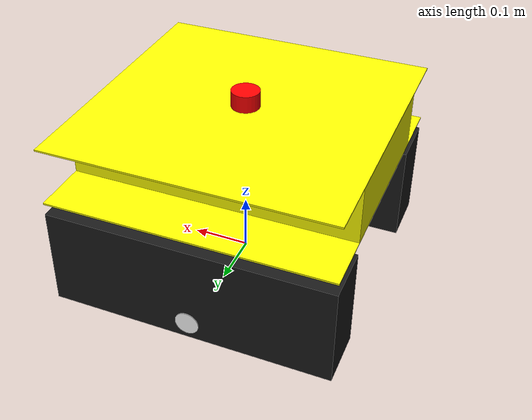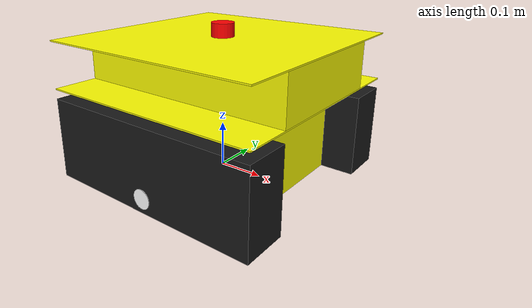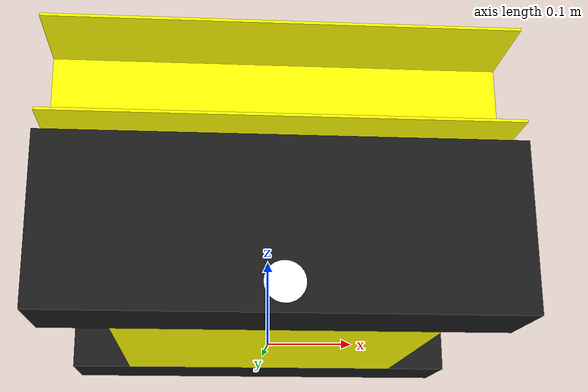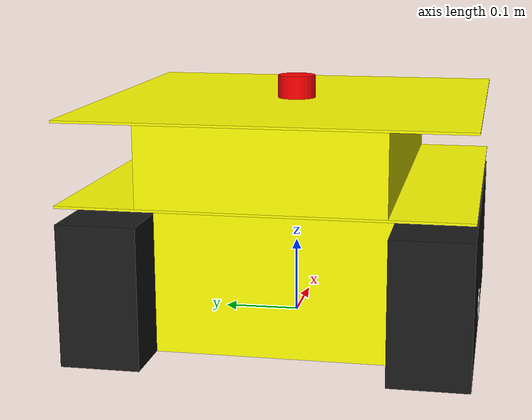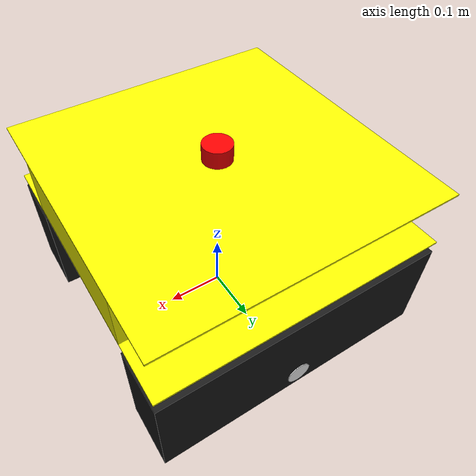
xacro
<?xml version="1.0"?>
<robot xmlns:xacro="http://www.ros.org/wiki/xacro" name="my_robot">

  <!-- ======================= Properties ======================= -->
  <xacro:property name="body_length" value="0.35"/>
  <xacro:property name="body_width" value="0.3"/>
  <xacro:property name="body_height" value="0.2"/>
  <xacro:property name="track_length" value="0.5"/>
  <xacro:property name="track_width" value="0.1"/>
  <xacro:property name="track_height" value="0.18"/>
  <xacro:property name="lidar_radius" value="0.025"/>
  <xacro:property name="lidar_height" value="0.03"/>
  <xacro:property name="wheel_radius" value="0.021"/>
  <xacro:property name="wheel_thickness" value="0.001"/>
  <xacro:property name="wheel_z_offset" value="-0.07"/>
  <xacro:property name="top_plate_length" value="0.5"/>
  <xacro:property name="top_plate_width" value="0.5"/>
  <xacro:property name="top_plate_thickness" value="0.003"/>
  <xacro:property name="lidar_stand_length" value="0.5"/>
  <xacro:property name="lidar_stand_width" value="0.3"/>
  <xacro:property name="lidar_stand_height" value="0.1"/>
  <xacro:property name="lidar_plate_length" value="0.5"/>
  <xacro:property name="lidar_plate_width" value="0.5"/>
  <xacro:property name="lidar_plate_thickness" value="0.003"/>
  <!-- ## NEW: IMU Box Size ## -->
  <xacro:property name="imu_size" value="0.02"/>

  <!-- ======================= Materials ======================= -->
  <material name="black">
    <color rgba="0.1 0.1 0.1 1.0"/>
  </material>
  <material name="yellow">
    <color rgba="1.0 1.0 0.0 1.0"/>
  </material>
  <material name="red">
    <color rgba="1 0 0 1"/>
  </material>
  <material name="white">
    <color rgba="1.0 1.0 1.0 1.0"/>
  </material>

  <!-- ======================= Robot Structure ======================= -->
  <link name="base_footprint"/>

  <link name="base_link">
    <visual>
      <geometry>
        <box size="${body_length} ${body_width} ${body_height}"/>
      </geometry>
      <material name="yellow"/>
    </visual>
    <collision>
      <geometry>
        <box size="${body_length*0.9} ${body_width*0.9} ${body_height*0.9}"/>
      </geometry>
    </collision>
    <inertial>
      <mass value="5.0"/>
      <inertia ixx="0.4" ixy="0" ixz="0" iyy="0.4" iyz="0" izz="0.2"/>
    </inertial>
  </link>
  <joint name="base_footprint_joint" type="fixed">
    <parent link="base_footprint"/>
    <child link="base_link"/>
    <origin xyz="0 0 ${wheel_radius - wheel_z_offset}"/>
  </joint>

  <!-- ## NEW: IMU Sensor Link and Joint ## -->
  <link name="imu_link">
    <inertial>
      <mass value="0.01"/>
      <inertia ixx="1e-6" ixy="0" ixz="0" iyy="1e-6" iyz="0" izz="1e-6"/>
    </inertial>
    <visual>
      <geometry>
        <box size="${imu_size} ${imu_size} ${imu_size}"/>
      </geometry>
      <material name="red"/>
    </visual>
    <collision>
      <geometry>
        <box size="${imu_size} ${imu_size} ${imu_size}"/>
      </geometry>
    </collision>
  </link>
  <joint name="imu_joint" type="fixed">
    <parent link="base_link"/>
    <child link="imu_link"/>
    <origin xyz="0 0 0"/>
  </joint>

  <xacro:macro name="track_housing" params="prefix side">
    <link name="${prefix}_track">
      <visual>
        <geometry>
          <box size="${track_length} ${track_width} ${track_height}"/>
        </geometry>
        <material name="black"/>
      </visual>
    </link>
    <joint name="base_to_${prefix}_track" type="fixed">
      <parent link="base_link"/>
      <child link="${prefix}_track"/>
      <origin xyz="0 ${side * (body_width/2 + track_width/2)} ${-body_height/2 + track_height/2}"/>
    </joint>
  </xacro:macro>
  <xacro:track_housing prefix="left" side="1"/>
  <xacro:track_housing prefix="right" side="-1"/>

  <xacro:macro name="drive_wheel" params="prefix side">
    <link name="${prefix}_wheel">
      <visual>
        <origin rpy="${pi/2} 0 0"/>
        <geometry>
          <cylinder radius="${wheel_radius}" length="${wheel_thickness}"/>
        </geometry>
        <material name="white"/>
      </visual>
      <collision>
        <origin rpy="${pi/2} 0 0"/>
        <geometry>
          <cylinder radius="${wheel_radius}" length="${wheel_thickness}"/>
        </geometry>
      </collision>
      <inertial>
        <mass value="0.5"/>
        <inertia ixx="0.001" ixy="0" ixz="0" iyy="0.001" iyz="0" izz="0.001"/>
      </inertial>
    </link>

    <joint name="${prefix}_wheel_joint" type="continuous">
      <parent link="base_link"/>
      <child link="${prefix}_wheel"/>
      <origin xyz="0 ${side * (body_width/2 + track_width + wheel_thickness/2)} ${wheel_z_offset}"/>
      <axis xyz="0 1 0"/>
    </joint>
  </xacro:macro>
  <xacro:drive_wheel prefix="left" side="1"/>
  <xacro:drive_wheel prefix="right" side="-1"/>

  <link name="top_plate">
    <visual>
      <geometry>
        <box size="${top_plate_length} ${top_plate_width} ${top_plate_thickness}"/>
      </geometry>
      <material name="yellow"/>
    </visual>
    <collision>
      <geometry>
        <box size="${top_plate_length} ${top_plate_width} ${top_plate_thickness}"/>
      </geometry>
    </collision>
    <inertial>
      <mass value="0.5"/>
      <inertia ixx="0.01" ixy="0" ixz="0" iyy="0.01" iyz="0" izz="0.01"/>
    </inertial>
  </link>
  <joint name="top_plate_joint" type="fixed">
    <parent link="base_link"/>
    <child link="top_plate"/>
    <origin xyz="0 0 ${body_height/2 + top_plate_thickness/2}"/>
  </joint>

  <link name="lidar_stand">
    <visual>
      <geometry>
        <box size="${lidar_stand_length} ${lidar_stand_width} ${lidar_stand_height}"/>
      </geometry>
      <material name="yellow"/>
    </visual>
    <collision>
      <geometry>
        <box size="${lidar_stand_length} ${lidar_stand_width} ${lidar_stand_height}"/>
      </geometry>
    </collision>
    <inertial>
      <mass value="0.2"/>
      <inertia ixx="0.01" ixy="0" ixz="0" iyy="0.01" iyz="0" izz="0.01"/>
    </inertial>
  </link>
  <joint name="lidar_stand_joint" type="fixed">
    <parent link="top_plate"/>
    <child link="lidar_stand"/>
    <origin xyz="0 0 ${top_plate_thickness/2 + lidar_stand_height/2}"/>
  </joint>

  <link name="lidar_plate">
    <visual>
      <geometry>
        <box size="${lidar_plate_length} ${lidar_plate_width} ${lidar_plate_thickness}"/>
      </geometry>
      <material name="yellow"/>
    </visual>
    <collision>
      <geometry>
        <box size="${lidar_plate_length} ${lidar_plate_width} ${lidar_plate_thickness}"/>
      </geometry>
    </collision>
    <inertial>
      <mass value="0.1"/>
      <inertia ixx="1e-6" ixy="0" ixz="0" iyy="1e-6" iyz="0" izz="1e-6"/>
    </inertial>
  </link>
  <joint name="lidar_plate_joint" type="fixed">
    <parent link="lidar_stand"/>
    <child link="lidar_plate"/>
    <origin xyz="0 0 ${lidar_stand_height/2 + lidar_plate_thickness/2}"/>
  </joint>

  <link name="lidar_link">
    <visual>
      <geometry>
        <cylinder radius="${lidar_radius}" length="${lidar_height}"/>
      </geometry>
      <material name="red"/>
    </visual>
    <collision>
      <geometry>
        <cylinder radius="${lidar_radius}" length="${lidar_height}"/>
      </geometry>
    </collision>
    <inertial>
      <mass value="0.1"/>
      <inertia ixx="1e-6" ixy="0" ixz="0" iyy="1e-6" iyz="0" izz="1e-6"/>
    </inertial>
  </link>
  <joint name="lidar_joint" type="fixed">
    <parent link="lidar_plate"/>
    <child link="lidar_link"/>
    <origin xyz="0 0 ${lidar_plate_thickness/2 + lidar_height/2}"/>
  </joint>

  <xacro:include filename="my_robot.gazebo.xacro" />
</robot>
